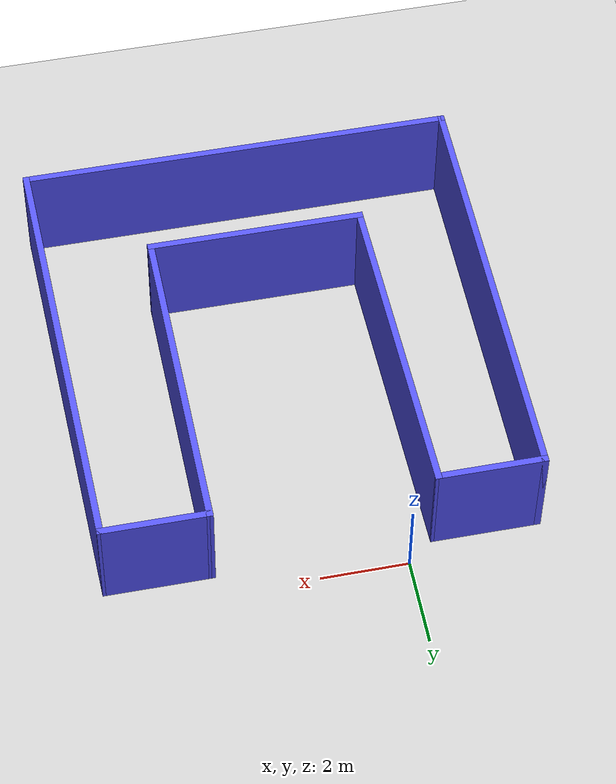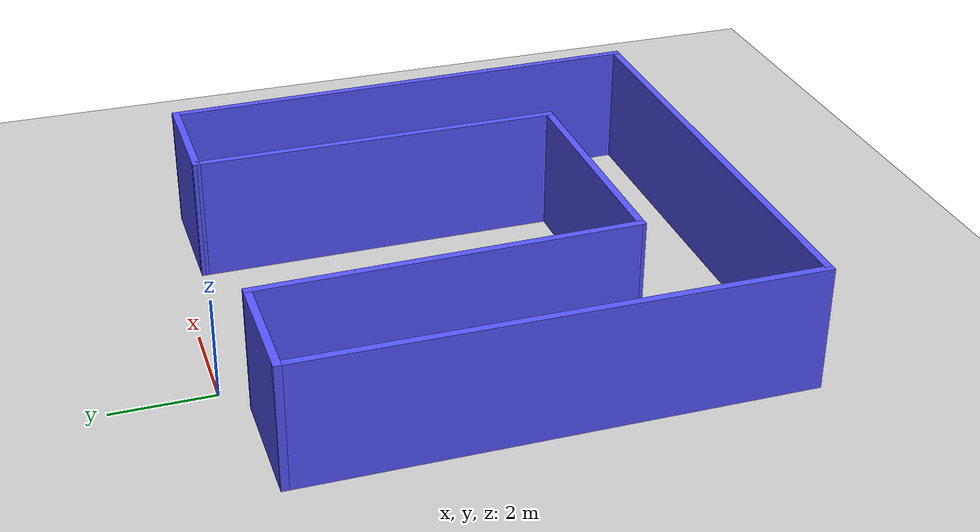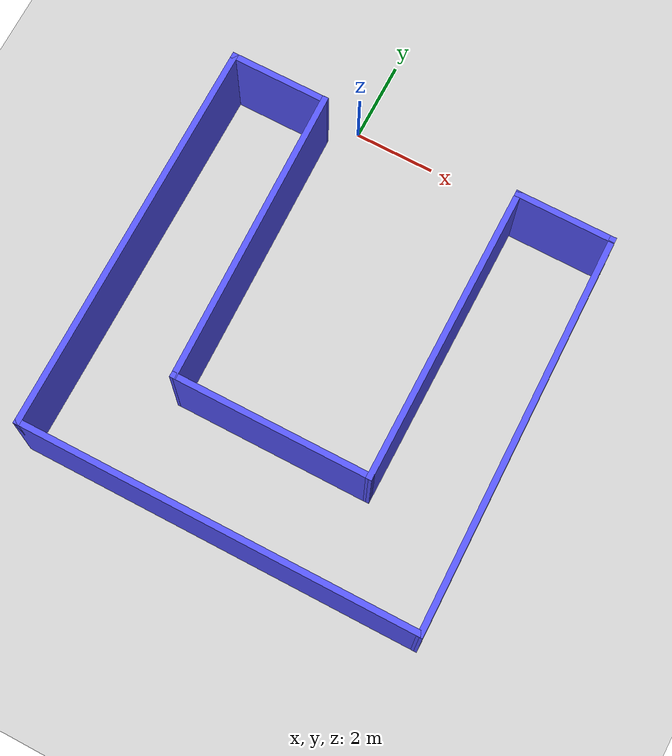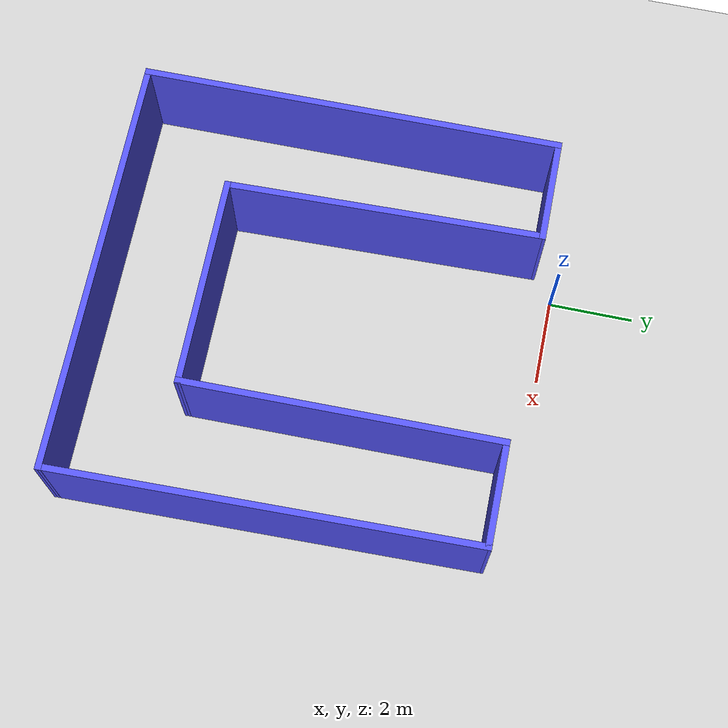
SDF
<sdf version="1.6">
 <world name="default">
  <light name="sun" type="directional">
   <pose>0 0 10 0 -0 0</pose>
   <diffuse>0.8 0.8 0.8 1</diffuse>
   <specular>0.2 0.2 0.2 1</specular>
   <attenuation>
    <range>1000</range>
    <constant>0.9</constant>
    <linear>0.01</linear>
    <quadratic>0.001</quadratic>
   </attenuation>
   <direction>-0.5 0.1 -0.9</direction>
  </light>
  <model name="ground_plane">
   <static>1</static>
   <link name="link">
    <collision name="collision">
     <geometry><plane><normal>0 0 1</normal><size>100 100</size></plane></geometry>
     <surface>
      <contact><collide_bitmask>65535</collide_bitmask></contact>
      <friction><ode><mu>100</mu><mu2>50</mu2></ode></friction>
     </surface>
    </collision>
    <visual name="visual">
     <cast_shadows>0</cast_shadows>
     <geometry><plane><normal>0 0 1</normal><size>100 100</size></plane></geometry>
     <material>
      <script><uri>file://media/materials/scripts/gazebo.material</uri><name>Gazebo/Grey</name></script>
     </material>
    </visual>
   </link>
  </model>
  <gravity>0 0 -9.8</gravity>
  <magnetic_field>6e-06 2.3e-05 -4.2e-05</magnetic_field>
  <atmosphere type="adiabatic"/>
  <physics name="default_physics" default="0" type="ode">
   <max_step_size>0.001</max_step_size>
   <real_time_factor>1</real_time_factor>
   <real_time_update_rate>1000</real_time_update_rate>
  </physics>
  <scene><ambient>0.4 0.4 0.4 1</ambient><background>0.7 0.7 0.7 1</background><shadows>1</shadows></scene>
  <spherical_coordinates>
   <surface_model>EARTH_WGS84</surface_model>
   <latitude_deg>0</latitude_deg>
   <longitude_deg>0</longitude_deg>
   <elevation>0</elevation>
   <heading_deg>0</heading_deg>
  </spherical_coordinates>
  <model name="MyWorld">
   <pose>1.9257 -5.46494 0 0 -0 0</pose>
   <link name="Wall_0">
    <collision name="Wall_0_Collision">
     <geometry><box><size>2.5 0.15 2.5</size></box></geometry>
     <pose>0 0 1.25 0 -0 0</pose>
    </collision>
    <visual name="Wall_0_Visual">
     <pose>0 0 1.25 0 -0 0</pose>
     <geometry><box><size>2.5 0.15 2.5</size></box></geometry>
     <material>
      <script><uri>file://media/materials/scripts/gazebo.material</uri><name>Gazebo/Grey</name></script>
      <ambient>0.333333 0.333333 1 1</ambient>
     </material>
     <meta><layer>0</layer></meta>
    </visual>
    <pose>-3.7507 4.92494 0 0 -0 0</pose>
   </link>
   <link name="Wall_17">
    <collision name="Wall_17_Collision">
     <geometry><box><size>10 0.15 2.5</size></box></geometry>
     <pose>0 0 1.25 0 -0 0</pose>
    </collision>
    <visual name="Wall_17_Visual">
     <pose>0 0 1.25 0 -0 0</pose>
     <geometry><box><size>10 0.15 2.5</size></box></geometry>
     <material>
      <script><uri>file://media/materials/scripts/gazebo.material</uri><name>Gazebo/Grey</name></script>
      <ambient>0.333333 0.333333 1 1</ambient>
     </material>
     <meta><layer>0</layer></meta>
    </visual>
    <pose>-0.000697 -4.92506 0 0 -0 0</pose>
   </link>
   <link name="Wall_19">
    <collision name="Wall_19_Collision">
     <geometry><box><size>10.0017 0.15 2.5</size></box></geometry>
     <pose>0 0 1.25 0 -0 0</pose>
    </collision>
    <visual name="Wall_19_Visual">
     <pose>0 0 1.25 0 -0 0</pose>
     <geometry><box><size>10.0017 0.15 2.5</size></box></geometry>
     <material>
      <script><uri>file://media/materials/scripts/gazebo.material</uri><name>Gazebo/Grey</name></script>
      <ambient>0.333333 0.333333 1 1</ambient>
     </material>
     <meta><layer>0</layer></meta>
    </visual>
    <pose>4.83181 -6e-05 0 0 -0 1.58957</pose>
   </link>
   <link name="Wall_21">
    <collision name="Wall_21_Collision">
     <geometry><box><size>7.50153 0.15 2.5</size></box></geometry>
     <pose>0 0 1.25 0 -0 0</pose>
    </collision>
    <visual name="Wall_21_Visual">
     <pose>0 0 1.25 0 -0 0</pose>
     <geometry><box><size>7.50153 0.15 2.5</size></box></geometry>
     <material>
      <script><uri>file://media/materials/scripts/gazebo.material</uri><name>Gazebo/Grey</name></script>
      <ambient>0.333333 0.333333 1 1</ambient>
     </material>
     <meta><layer>0</layer></meta>
    </visual>
    <pose>-2.5007 1.24994 0 0 0 -1.55039</pose>
   </link>
   <link name="Wall_24">
    <collision name="Wall_24_Collision">
     <geometry><box><size>5 0.15 2.5</size></box></geometry>
     <pose>0 0 1.25 0 -0 0</pose>
    </collision>
    <visual name="Wall_24_Visual">
     <pose>0 0 1.25 0 -0 0</pose>
     <geometry><box><size>5 0.15 2.5</size></box></geometry>
     <material>
      <script><uri>file://media/materials/scripts/gazebo.material</uri><name>Gazebo/Grey</name></script>
      <ambient>0.333333 0.333333 1 1</ambient>
     </material>
     <meta><layer>0</layer></meta>
    </visual>
    <pose>-0.000697 -2.42506 0 0 -0 0</pose>
   </link>
   <link name="Wall_25">
    <collision name="Wall_25_Collision">
     <geometry><box><size>7.5 0.15 2.5</size></box></geometry>
     <pose>0 0 1.25 0 -0 0</pose>
    </collision>
    <visual name="Wall_25_Visual">
     <pose>0 0 1.25 0 -0 0</pose>
     <geometry><box><size>7.5 0.15 2.5</size></box></geometry>
     <material>
      <script><uri>file://media/materials/scripts/gazebo.material</uri><name>Gazebo/Grey</name></script>
      <ambient>0.333333 0.333333 1 1</ambient>
     </material>
     <meta><layer>0</layer></meta>
    </visual>
    <pose>2.40681 1.24994 0 0 -0 1.57556</pose>
   </link>
   <link name="Wall_26">
    <collision name="Wall_26_Collision">
     <geometry><box><size>2.5 0.15 2.5</size></box></geometry>
     <pose>0 0 1.25 0 -0 0</pose>
    </collision>
    <visual name="Wall_26_Visual">
     <pose>0 0 1.25 0 -0 0</pose>
     <geometry><box><size>2.5 0.15 2.5</size></box></geometry>
     <material>
      <script><uri>file://media/materials/scripts/gazebo.material</uri><name>Gazebo/Grey</name></script>
      <ambient>0.333333 0.333333 1 1</ambient>
     </material>
     <meta><layer>0</layer></meta>
    </visual>
    <pose>3.56432 4.92494 0 0 -0 0</pose>
   </link>
   <link name="Wall_5">
    <collision name="Wall_5_Collision">
     <geometry><box><size>10 0.15 2.5</size></box></geometry>
     <pose>0 0 1.25 0 -0 0</pose>
    </collision>
    <visual name="Wall_5_Visual">
     <pose>0 0 1.25 0 -0 0</pose>
     <geometry><box><size>10 0.15 2.5</size></box></geometry>
     <material>
      <script><uri>file://media/materials/scripts/gazebo.material</uri><name>Gazebo/Grey</name></script>
      <ambient>0.333333 0.333333 1 1</ambient>
     </material>
     <meta><layer>0</layer></meta>
    </visual>
    <pose>-4.9257 -6e-05 0 0 0 -1.5708</pose>
   </link>
   <static>1</static>
  </model>
 </world>
</sdf>
